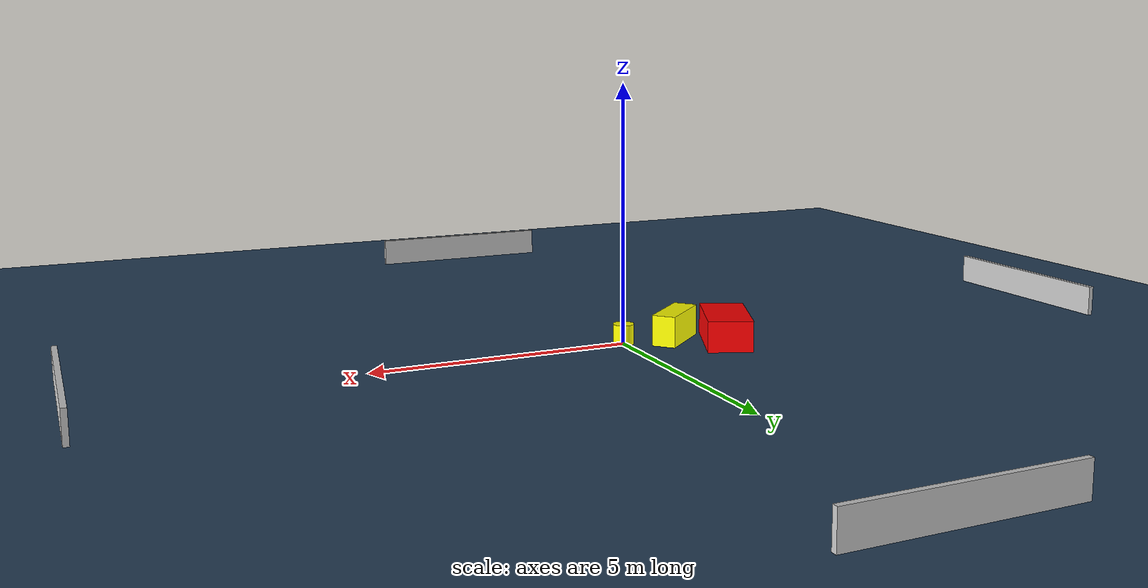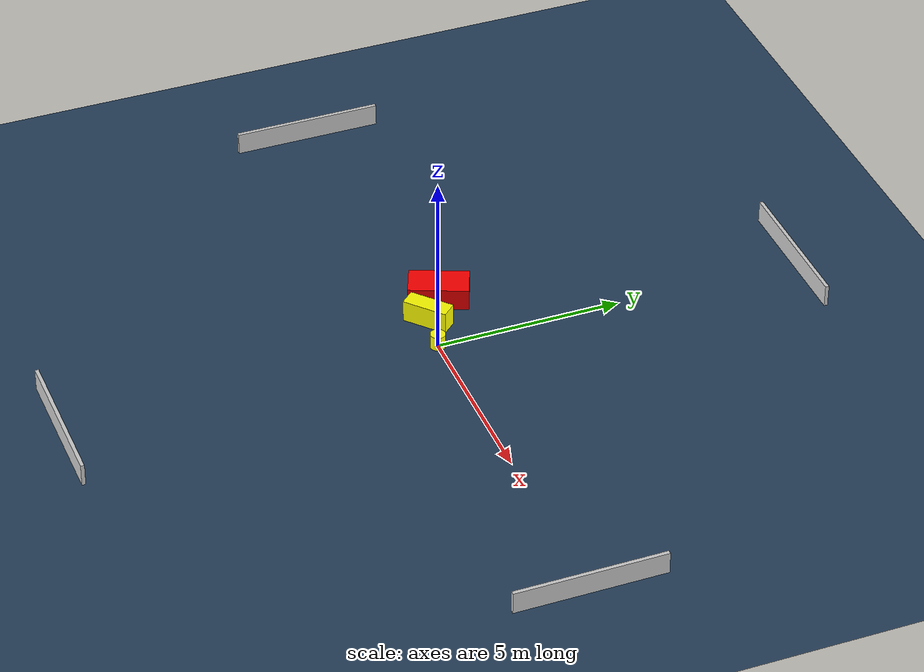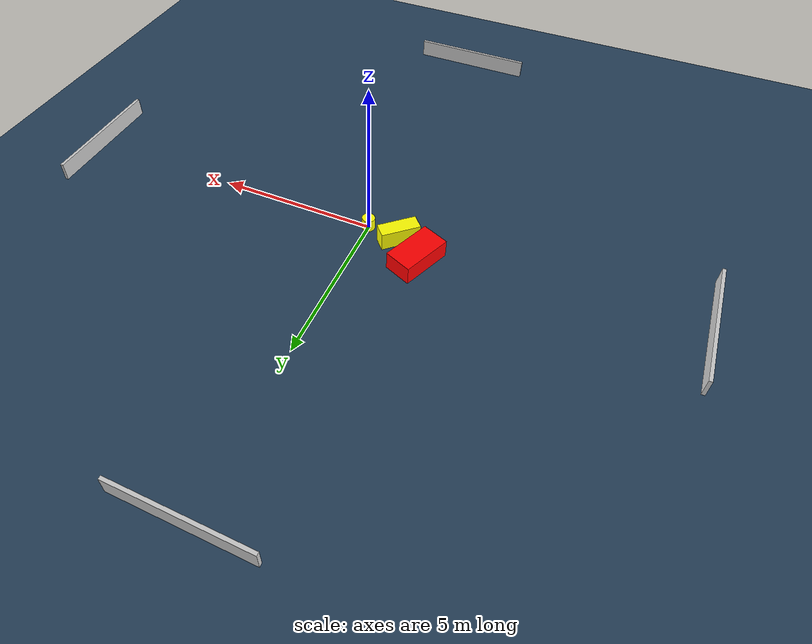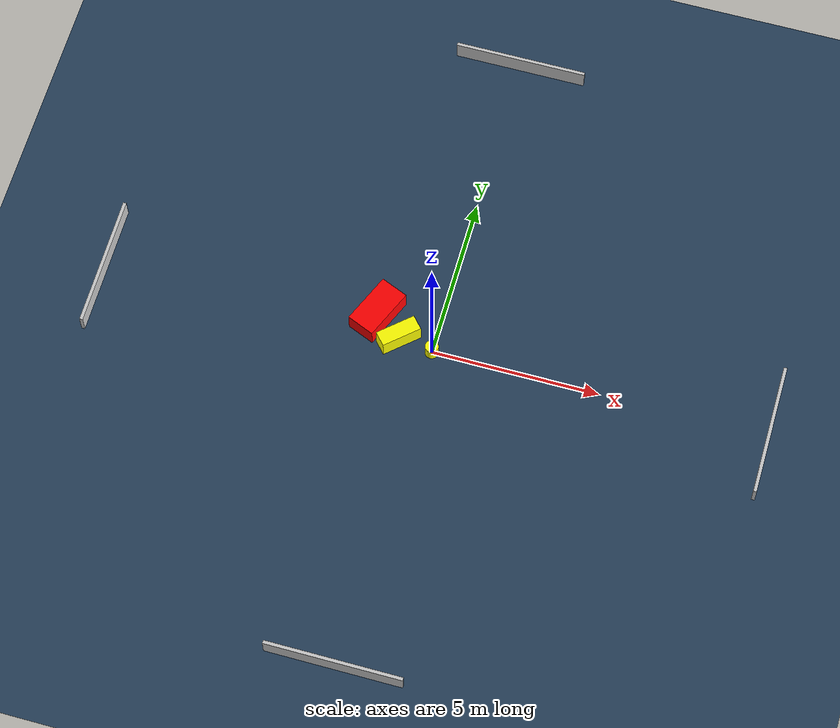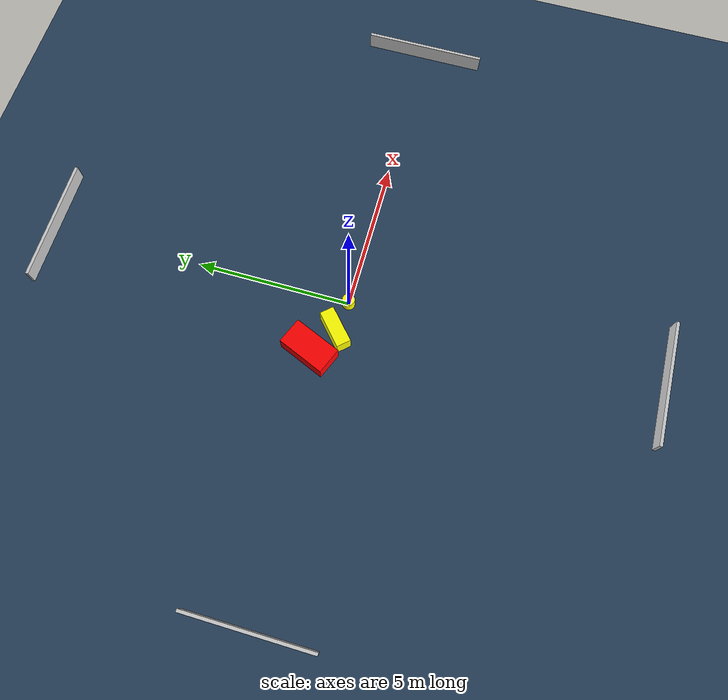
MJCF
<?xml version="1.0" ?>
<mujoco model="generated_environment">
  <option timestep="0.01" integrator="RK4" cone="elliptic"/>
  <default>
    <geom density="1"/>
  </default>
  <asset>
    <texture builtin="gradient" height="3072" name="skybox" rgb1="0.3 0.5 0.7" rgb2="0 0 0" type="skybox" width="512"/>
    <texture builtin="checker" height="300" name="groundplane" rgb1="0.2 0.3 0.4" rgb2="0.1 0.2 0.3" type="2d" width="300"/>
    <material name="groundplane" reflectance="0.2" texrepeat="5 5" texture="groundplane"/>
  </asset>
  <worldbody>
    <light dir="0 0 -1" directional="true" pos="0 0 1.5"/>
    <geom condim="3" friction="0.5 0.005 0.001" material="groundplane" name="floor" pos="0 0 0" size="0 0 0.05" type="plane"/>
    <body name="walls">
      <geom name="wall_1" condim="4" pos="-10.0 0.0 0.3" rgba="0.800000011920929 0.800000011920929 0.800000011920929 1.0" size="0.05 2.0 0.3" type="box"/>
      <geom name="wall_2" condim="4" pos="10.0 0.0 0.3" rgba="0.800000011920929 0.800000011920929 0.800000011920929 1.0" size="0.05 2.0 0.3" type="box"/>
      <geom name="wall_3" condim="4" pos="0.0 -10.0 0.3" rgba="0.800000011920929 0.800000011920929 0.800000011920929 1.0" size="2.0 0.05 0.3" type="box"/>
      <geom name="wall_4" condim="4" pos="0.0 10.0 0.3" rgba="0.800000011920929 0.800000011920929 0.800000011920929 1.0" size="2.0 0.05 0.3" type="box"/>
    </body>
    <body name="robot">
      <joint name="joint_x" type="slide" pos="0 0 0" axis="1 0 0"/>
      <joint name="joint_y" type="slide" pos="0 0 0" axis="0 1 0"/>
      <geom name="robot" type="cylinder" pos="0.0 0.0 0.2" size="0.2 0.2 0.0" mass="5.0" friction="1.0 0.005 0.0001" condim="4" rgba="1.0 1.0 0.0 1.0"/>
    </body>
    <body name="obstacle_1_movable">
      <geom name="obstacle_1_movable" condim="4" pos="-1.0404651785304913 0.13638383523311384 0.3" euler="0 0 221.94313827376803" friction="0.0 0.005 0.001" rgba="1.0 1.0 0.0 1.0" size="0.6084694881215515 0.2317898024634811 0.3" type="box" mass="0.1"/>
      <joint type="free"/>
    </body>
    <body name="obstacle_2_static">
      <geom name="obstacle_2_static" condim="4" pos="-1.844989296032139 0.7321294770751419 0.3" euler="0 0 67.25377467784956" friction="0.0 0.005 0.001" rgba="1.0 0.0 0.0 1.0" size="0.7939029377056455 0.4321599995148184 0.3" type="box"/>
    </body>
  </worldbody>
  <actuator>
    <motor name="actuator_x" joint="joint_x" gear="1" ctrlrange="-1 1"/>
    <motor name="actuator_y" joint="joint_y" gear="1" ctrlrange="-1 1"/>
  </actuator>
</mujoco>
